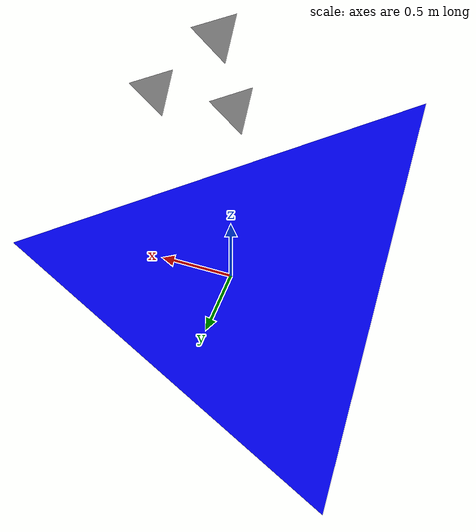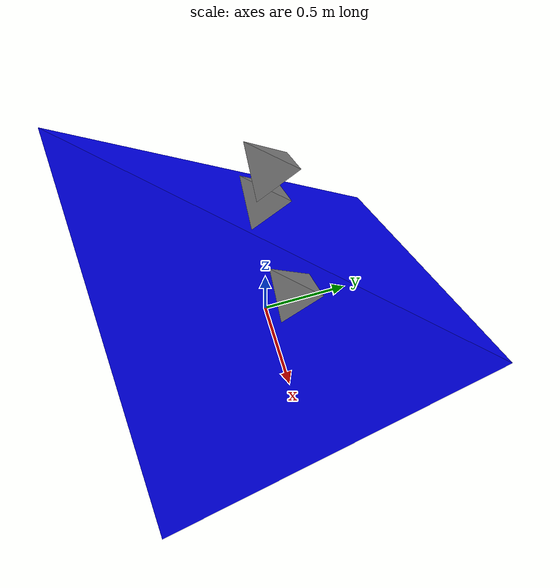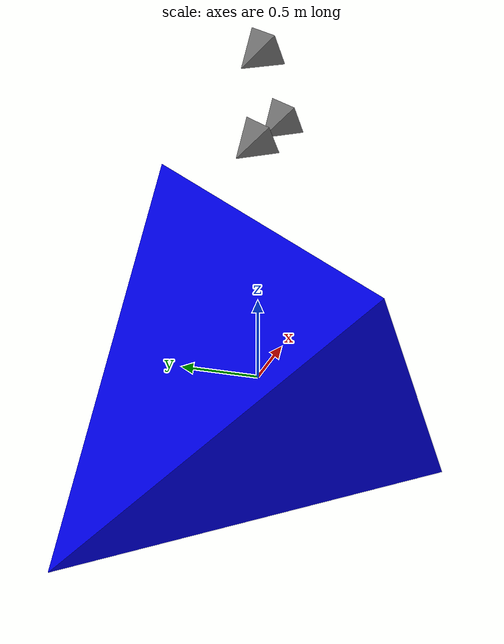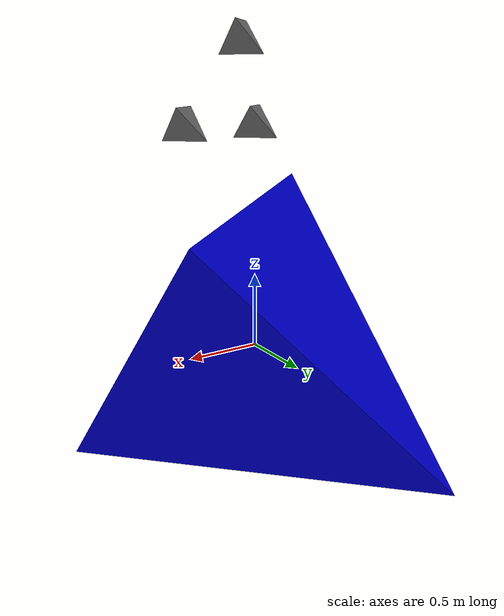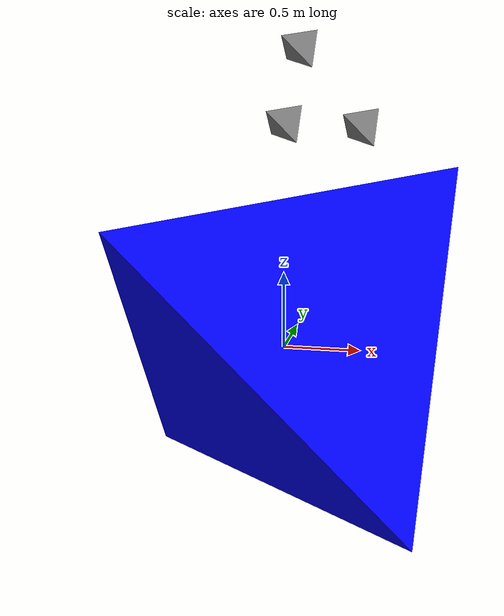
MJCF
<mujoco model="two_tet">
  <compiler angle="degree"/>
  <option gravity="0 0 -9.8100000000000005"/>
  <default>
    <default class="/">
      <joint damping="0.001"/>
      <geom friction="1 0.0050000000000000001 0.0001" density="500"/>
    </default>
  </default>

  <asset>
    <texture builtin="gradient" height="100" rgb1="1 1 1" rgb2="0 0 0" type="skybox" width="100"/>
    <texture builtin="flat" height="1278" mark="cross" markrgb="1 1 1" name="texgeom" random="0.01" rgb1="0.8 0.6 0.4" rgb2="0.8 0.6 0.4" type="cube" width="127"/>
    <texture builtin="checker" height="100" name="texplane" rgb1="0 0 0" rgb2="0.8 0.8 0.8" type="2d" width="100"/>
    <material name="MatPlane" reflectance="0.5" shininess="1" specular="1" texrepeat="60 60" texture="texplane"/>
    <mesh name="tet" file="tet.obj"/>
    <mesh name="small_tet" file="tet.obj" scale="0.1 0.1 0.1"/>
  </asset>

  <worldbody>
    <geom name="tet1" contype="1" conaffinity="1" pos="0 0 0" type="mesh" rgba="0 0 1 1" mesh="tet"/>

    <body name="tet2" pos="0 0 1.5">
      <joint name="root1" class="/" type="free"/>
      <geom name="tet2" contype="1" conaffinity="1" pos="0 0 0" type="mesh" mesh="small_tet"/>
    </body>

    <body name="tet3" pos="0.5 0 1.5">
      <joint name="root2" class="/" type="free"/>
      <geom name="tet3" contype="1" conaffinity="1" pos="0 0 0" type="mesh" mesh="small_tet"/>
    </body>

    <body name="tet4" pos="0.1 0 2.0">
      <joint name="root3" class="/" type="free"/>
      <geom name="tet4" contype="1" conaffinity="1" pos="0 0 0" type="mesh" mesh="small_tet"/>
    </body>
  </worldbody>
</mujoco>
